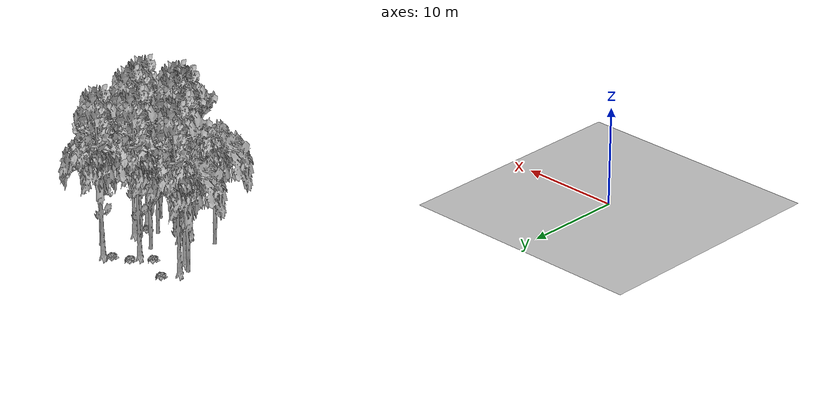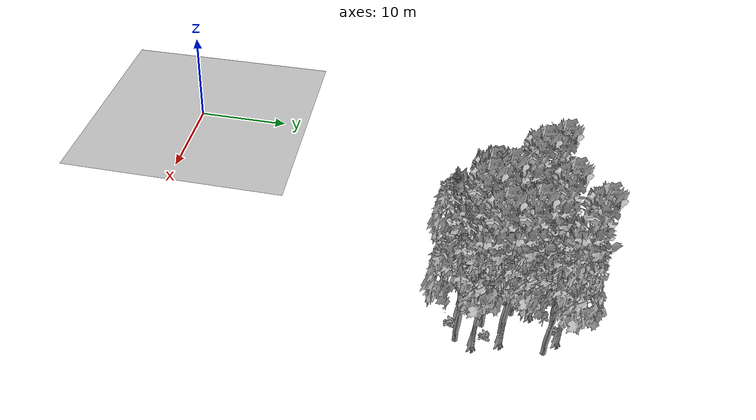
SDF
<sdf version="1.7">
 <world name="default">
  <model name="ground_plane">
   <static>1</static>
   <link name="link">
    <collision name="collision">
     <pose>-50 0 0 0 -0 0</pose>
     <geometry><plane><normal>0 0 1</normal><size>80 80</size></plane></geometry>
     <surface><contact><ode><min_depth>0.01</min_depth><max_vel>0</max_vel></ode></contact></surface>
    </collision>
    <visual name="grass">
     <cast_shadows>0</cast_shadows>
     <geometry>
      <mesh>
       <scale>0.46714285714285714 0.46714285714285714 0.1</scale>
       <uri>file://grass_plane/meshes/grass_plane.dae</uri>
      </mesh>
     </geometry>
    </visual>
   </link>
  </model>
  <model name="Tree 53">
   <static>1</static>
   <pose>25.800827224135304 33.56252526258028 0 1.57079 -0 0</pose>
   <link name="link">
    <collision name="collision">
     <geometry><mesh><scale>3.5 5 3.5</scale><uri>model://tree_2/meshes/tree_2.obj</uri></mesh></geometry>
    </collision>
    <visual name="visual">
     <geometry><mesh><scale>3.5 5 3.5</scale><uri>model://tree_2/meshes/tree_2.obj</uri></mesh></geometry>
    </visual>
   </link>
  </model>
  <model name="Tree 86">
   <static>1</static>
   <pose>24.710180660168923 32.42926328270747 0 1.57079 -0 0</pose>
   <link name="link">
    <collision name="collision">
     <geometry><mesh><scale>3.5 5 3.5</scale><uri>model://tree_2/meshes/tree_2.obj</uri></mesh></geometry>
    </collision>
    <visual name="visual">
     <geometry><mesh><scale>3.5 5 3.5</scale><uri>model://tree_2/meshes/tree_2.obj</uri></mesh></geometry>
    </visual>
   </link>
  </model>
  <model name="Tree 104">
   <static>1</static>
   <pose>20.491029578934885 31.28511133513655 0 1.57079 -0 0</pose>
   <link name="link">
    <collision name="collision">
     <geometry><mesh><scale>3.5 5 3.5</scale><uri>model://tree_2/meshes/tree_2.obj</uri></mesh></geometry>
    </collision>
    <visual name="visual">
     <geometry><mesh><scale>3.5 5 3.5</scale><uri>model://tree_2/meshes/tree_2.obj</uri></mesh></geometry>
    </visual>
   </link>
  </model>
  <model name="Tree 172">
   <static>1</static>
   <pose>23.537102345224888 31.662498945660218 0 1.57079 -0 0</pose>
   <link name="link">
    <collision name="collision">
     <geometry><mesh><scale>3.5 5 3.5</scale><uri>model://tree_9/meshes/tree_9.obj</uri></mesh></geometry>
    </collision>
    <visual name="visual">
     <geometry><mesh><scale>3.5 5 3.5</scale><uri>model://tree_9/meshes/tree_9.obj</uri></mesh></geometry>
    </visual>
   </link>
  </model>
  <model name="Tree 210">
   <static>1</static>
   <pose>23.739764165626823 31.618769218536073 0 1.57079 -0 0</pose>
   <link name="link">
    <collision name="collision">
     <geometry><mesh><scale>3.5 5 3.5</scale><uri>model://tree_9/meshes/tree_9.obj</uri></mesh></geometry>
    </collision>
    <visual name="visual">
     <geometry><mesh><scale>3.5 5 3.5</scale><uri>model://tree_9/meshes/tree_9.obj</uri></mesh></geometry>
    </visual>
   </link>
  </model>
  <model name="Tree 239">
   <static>1</static>
   <pose>23.592865260393317 33.0018340375848 0 1.57079 -0 0</pose>
   <link name="link">
    <collision name="collision">
     <geometry><mesh><scale>3.5 5 3.5</scale><uri>model://tree_9/meshes/tree_9.obj</uri></mesh></geometry>
    </collision>
    <visual name="visual">
     <geometry><mesh><scale>3.5 5 3.5</scale><uri>model://tree_9/meshes/tree_9.obj</uri></mesh></geometry>
    </visual>
   </link>
  </model>
  <model name="Tree 280">
   <static>1</static>
   <pose>26.22697026015227 39.940198789821295 0 1.57079 -0 0</pose>
   <link name="link">
    <collision name="collision">
     <geometry><mesh><scale>3.5 5 3.5</scale><uri>model://tree_9/meshes/tree_9.obj</uri></mesh></geometry>
    </collision>
    <visual name="visual">
     <geometry><mesh><scale>3.5 5 3.5</scale><uri>model://tree_9/meshes/tree_9.obj</uri></mesh></geometry>
    </visual>
   </link>
  </model>
  <model name="Tree 293">
   <static>1</static>
   <pose>23.93688187148097 36.079338918869496 0 1.57079 -0 0</pose>
   <link name="link">
    <collision name="collision">
     <geometry><mesh><scale>3.5 5 3.5</scale><uri>model://tree_2/meshes/tree_2.obj</uri></mesh></geometry>
    </collision>
    <visual name="visual">
     <geometry><mesh><scale>3.5 5 3.5</scale><uri>model://tree_2/meshes/tree_2.obj</uri></mesh></geometry>
    </visual>
   </link>
  </model>
  <model name="Tree 337">
   <static>1</static>
   <pose>28.21298024261047 32.80857953844249 0 1.57079 -0 0</pose>
   <link name="link">
    <collision name="collision">
     <geometry><mesh><scale>3.5 5 3.5</scale><uri>model://tree_9/meshes/tree_9.obj</uri></mesh></geometry>
    </collision>
    <visual name="visual">
     <geometry><mesh><scale>3.5 5 3.5</scale><uri>model://tree_9/meshes/tree_9.obj</uri></mesh></geometry>
    </visual>
   </link>
  </model>
  <model name="Tree 344">
   <static>1</static>
   <pose>23.723400022573152 37.708127727017484 0 1.57079 -0 0</pose>
   <link name="link">
    <collision name="collision">
     <geometry><mesh><scale>3.5 5 3.5</scale><uri>model://tree_9/meshes/tree_9.obj</uri></mesh></geometry>
    </collision>
    <visual name="visual">
     <geometry><mesh><scale>3.5 5 3.5</scale><uri>model://tree_9/meshes/tree_9.obj</uri></mesh></geometry>
    </visual>
   </link>
  </model>
  <model name="Tree 374">
   <static>1</static>
   <pose>25.15472101067767 31.4532673447725 0 1.57079 -0 0</pose>
   <link name="link">
    <collision name="collision">
     <geometry><mesh><scale>3.5 5 3.5</scale><uri>model://tree_9/meshes/tree_9.obj</uri></mesh></geometry>
    </collision>
    <visual name="visual">
     <geometry><mesh><scale>3.5 5 3.5</scale><uri>model://tree_9/meshes/tree_9.obj</uri></mesh></geometry>
    </visual>
   </link>
  </model>
  <model name="Tree 399">
   <static>1</static>
   <pose>18.17248721622631 36.66340535653826 0 1.57079 -0 0</pose>
   <link name="link">
    <collision name="collision">
     <geometry><mesh><scale>3.5 5 3.5</scale><uri>model://tree_2/meshes/tree_2.obj</uri></mesh></geometry>
    </collision>
    <visual name="visual">
     <geometry><mesh><scale>3.5 5 3.5</scale><uri>model://tree_2/meshes/tree_2.obj</uri></mesh></geometry>
    </visual>
   </link>
  </model>
  <model name="Tree 499">
   <static>1</static>
   <pose>27.365508286506667 35.13115430084697 0 1.57079 -0 0</pose>
   <link name="link">
    <collision name="collision">
     <geometry><mesh><scale>3.5 5 3.5</scale><uri>model://tree_9/meshes/tree_9.obj</uri></mesh></geometry>
    </collision>
    <visual name="visual">
     <geometry><mesh><scale>3.5 5 3.5</scale><uri>model://tree_9/meshes/tree_9.obj</uri></mesh></geometry>
    </visual>
   </link>
  </model>
  <model name="Tree 510">
   <static>1</static>
   <pose>27.910788981536868 31.383644097428842 0 1.57079 -0 0</pose>
   <link name="link">
    <collision name="collision">
     <geometry><mesh><scale>3.5 5 3.5</scale><uri>model://tree_2/meshes/tree_2.obj</uri></mesh></geometry>
    </collision>
    <visual name="visual">
     <geometry><mesh><scale>3.5 5 3.5</scale><uri>model://tree_2/meshes/tree_2.obj</uri></mesh></geometry>
    </visual>
   </link>
  </model>
  <model name="Tree 549">
   <static>1</static>
   <pose>26.333416641546265 35.19195647912389 0 1.57079 -0 0</pose>
   <link name="link">
    <collision name="collision">
     <geometry><mesh><scale>3.5 5 3.5</scale><uri>model://tree_2/meshes/tree_2.obj</uri></mesh></geometry>
    </collision>
    <visual name="visual">
     <geometry><mesh><scale>3.5 5 3.5</scale><uri>model://tree_2/meshes/tree_2.obj</uri></mesh></geometry>
    </visual>
   </link>
  </model>
  <model name="Tree 551">
   <static>1</static>
   <pose>19.886418394561254 35.61116869174771 0 1.57079 -0 0</pose>
   <link name="link">
    <collision name="collision">
     <geometry><mesh><scale>3.5 5 3.5</scale><uri>model://tree_9/meshes/tree_9.obj</uri></mesh></geometry>
    </collision>
    <visual name="visual">
     <geometry><mesh><scale>3.5 5 3.5</scale><uri>model://tree_9/meshes/tree_9.obj</uri></mesh></geometry>
    </visual>
   </link>
  </model>
  <model name="Tree 561">
   <static>1</static>
   <pose>18.711498631621602 37.30205419797866 0 1.57079 -0 0</pose>
   <link name="link">
    <collision name="collision">
     <geometry><mesh><scale>3.5 5 3.5</scale><uri>model://tree_9/meshes/tree_9.obj</uri></mesh></geometry>
    </collision>
    <visual name="visual">
     <geometry><mesh><scale>3.5 5 3.5</scale><uri>model://tree_9/meshes/tree_9.obj</uri></mesh></geometry>
    </visual>
   </link>
  </model>
  <model name="Tree 594">
   <static>1</static>
   <pose>27.748264716148412 38.766307287123524 0 1.57079 -0 0</pose>
   <link name="link">
    <collision name="collision">
     <geometry><mesh><scale>3.5 5 3.5</scale><uri>model://tree_2/meshes/tree_2.obj</uri></mesh></geometry>
    </collision>
    <visual name="visual">
     <geometry><mesh><scale>3.5 5 3.5</scale><uri>model://tree_2/meshes/tree_2.obj</uri></mesh></geometry>
    </visual>
   </link>
  </model>
  <model name="Bush 12">
   <static>1</static>
   <pose>25.18175282980551 39.67971253954718 0 1.57079 -0 0</pose>
   <link name="link">
    <collision name="collision">
     <geometry><mesh><scale>2 2 2</scale><uri>model://bush_2/meshes/bush_2.obj</uri></mesh></geometry>
     <surface><contact><collide_without_contact>false</collide_without_contact></contact></surface>
    </collision>
    <visual name="visual">
     <geometry><mesh><scale>2 2 2</scale><uri>model://bush_2/meshes/bush_2.obj</uri></mesh></geometry>
    </visual>
   </link>
  </model>
  <model name="Bush 13">
   <static>1</static>
   <pose>22.114377252276967 37.41459582372468 0 1.57079 -0 0</pose>
   <link name="link">
    <collision name="collision">
     <geometry><mesh><scale>2 2 2</scale><uri>model://bush_2/meshes/bush_2.obj</uri></mesh></geometry>
     <surface><contact><collide_without_contact>false</collide_without_contact></contact></surface>
    </collision>
    <visual name="visual">
     <geometry><mesh><scale>2 2 2</scale><uri>model://bush_2/meshes/bush_2.obj</uri></mesh></geometry>
    </visual>
   </link>
  </model>
  <model name="Bush 440">
   <static>1</static>
   <pose>23.58097395729679 38.92251801304435 0 1.57079 -0 0</pose>
   <link name="link">
    <collision name="collision">
     <geometry><mesh><scale>2 2 2</scale><uri>model://bush_2/meshes/bush_2.obj</uri></mesh></geometry>
     <surface><contact><collide_without_contact>false</collide_without_contact></contact></surface>
    </collision>
    <visual name="visual">
     <geometry><mesh><scale>2 2 2</scale><uri>model://bush_2/meshes/bush_2.obj</uri></mesh></geometry>
    </visual>
   </link>
  </model>
  <model name="Bush 480">
   <static>1</static>
   <pose>26.98994537357028 33.86356695514584 0 1.57079 -0 0</pose>
   <link name="link">
    <collision name="collision">
     <geometry><mesh><scale>2 2 2</scale><uri>model://bush_2/meshes/bush_2.obj</uri></mesh></geometry>
     <surface><contact><collide_without_contact>false</collide_without_contact></contact></surface>
    </collision>
    <visual name="visual">
     <geometry><mesh><scale>2 2 2</scale><uri>model://bush_2/meshes/bush_2.obj</uri></mesh></geometry>
    </visual>
   </link>
  </model>
  <model name="Bush 504">
   <static>1</static>
   <pose>19.18902699986306 39.056297312126986 0 1.57079 -0 0</pose>
   <link name="link">
    <collision name="collision">
     <geometry><mesh><scale>2 2 2</scale><uri>model://bush_2/meshes/bush_2.obj</uri></mesh></geometry>
     <surface><contact><collide_without_contact>false</collide_without_contact></contact></surface>
    </collision>
    <visual name="visual">
     <geometry><mesh><scale>2 2 2</scale><uri>model://bush_2/meshes/bush_2.obj</uri></mesh></geometry>
    </visual>
   </link>
  </model>
  <model name="Bush 636">
   <static>1</static>
   <pose>26.10802563268662 30.811382552713255 0 1.57079 -0 0</pose>
   <link name="link">
    <collision name="collision">
     <geometry><mesh><scale>2 2 2</scale><uri>model://bush_2/meshes/bush_2.obj</uri></mesh></geometry>
     <surface><contact><collide_without_contact>false</collide_without_contact></contact></surface>
    </collision>
    <visual name="visual">
     <geometry><mesh><scale>2 2 2</scale><uri>model://bush_2/meshes/bush_2.obj</uri></mesh></geometry>
    </visual>
   </link>
  </model>
 </world>
</sdf>
